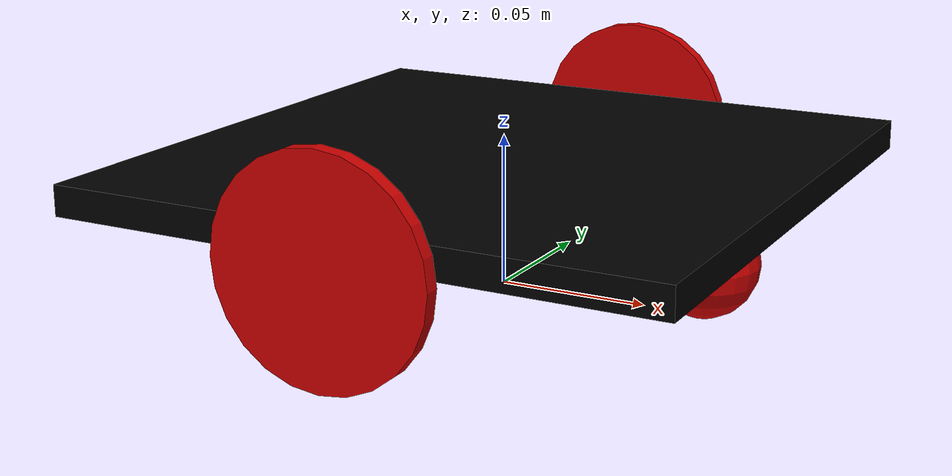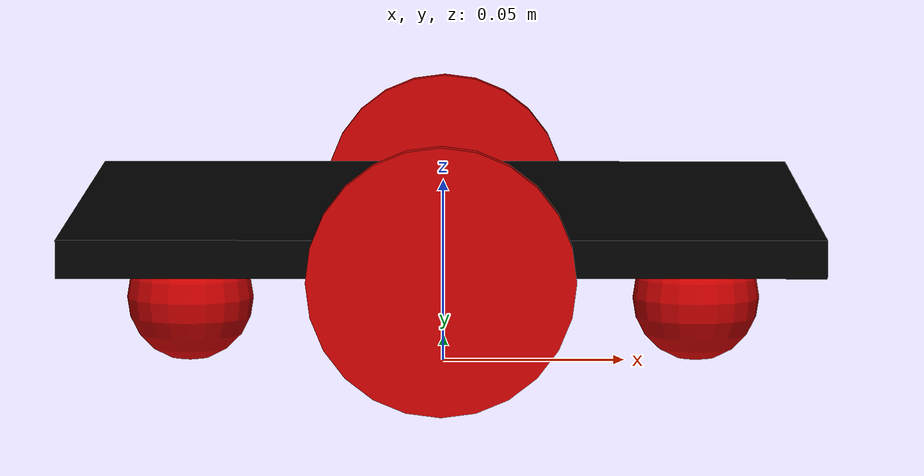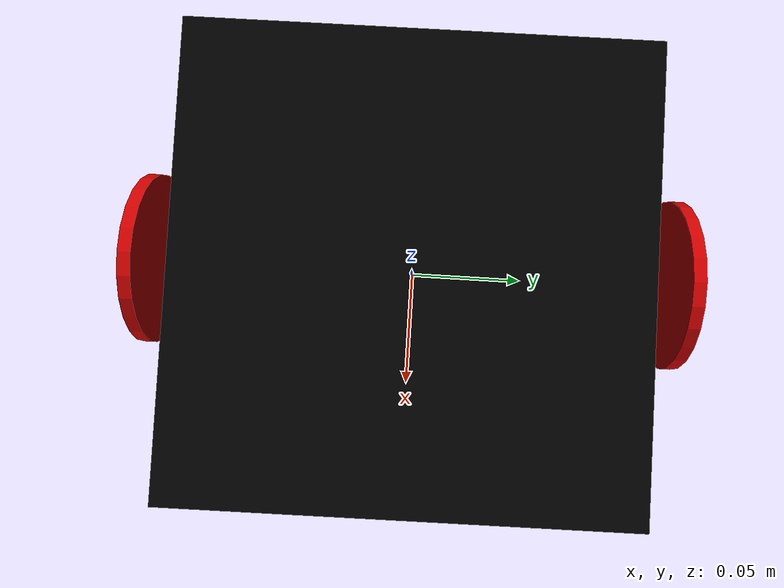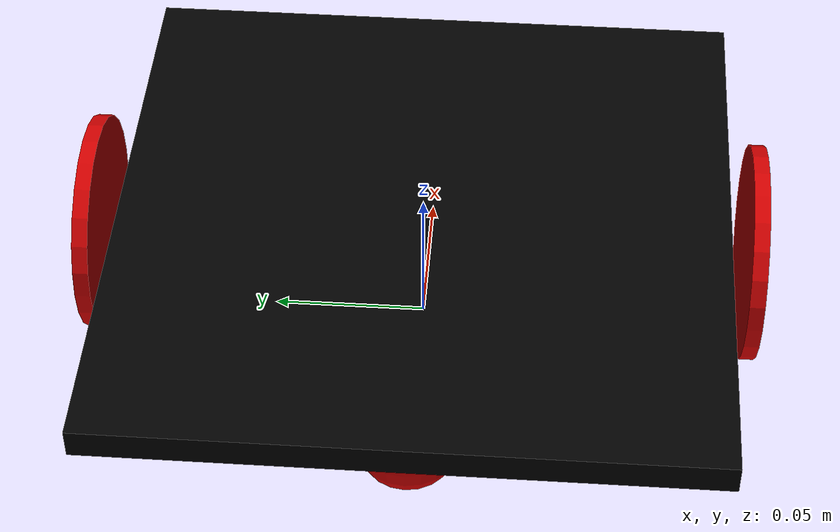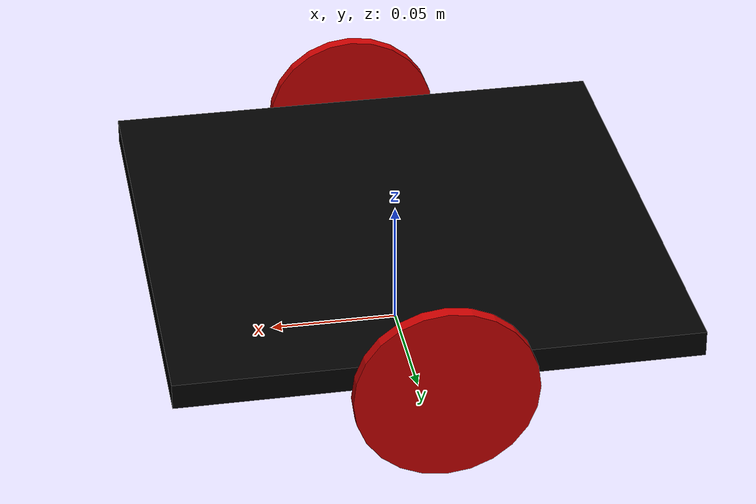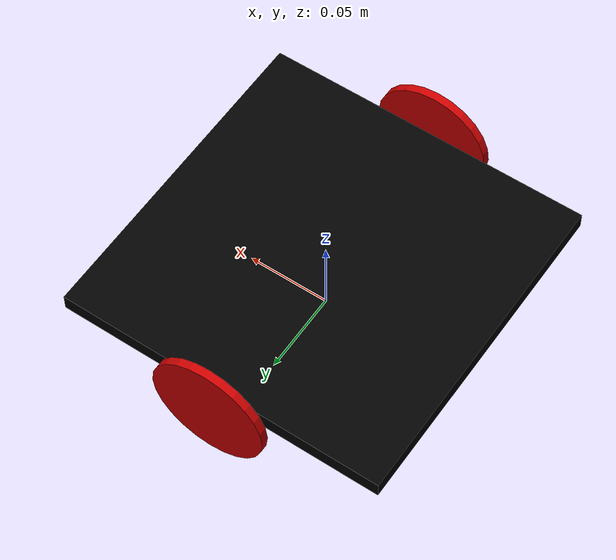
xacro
<?xml version="1.0"?>
<robot xmlns:xacro="http://www.ros.org/wiki/xacro" name="diff_drive">

  <xacro:property name="base_width" value="0.2"/>
  <xacro:property name="base_len" value="0.2"/>

  <xacro:property name="wheel_radius" value="0.035"/>
  <xacro:property name="base_wheel_gap" value="0.007"/>
  <xacro:property name="wheel_joint_offset" value="0.02"/>

  <xacro:property name="caster_wheel_radius" value="${wheel_radius/2}"/>
  <xacro:property name="caster_wheel_joint_offset" value="0.07"/>

  <!--Include files-->
  <xacro:include filename="$(find diff_drive_description)/urdf/diff_drive_inertial.urdf.xacro" /> <!--Interial macros-->
  <xacro:include filename="$(find diff_drive_description)/urdf/diff_drive_materials.urdf.xacro" /> <!--Colors (materials)-->
  <xacro:include filename="$(find diff_drive_description)/urdf/diff_drive_gazebo.urdf.xacro" /> <!-- Gazebo plugins -->

  <!--Base Footprint-->
  <link name="base_footprint">
    <visual>
        <origin xyz="0 0 0" rpy="0 0 0" />
        <geometry>
            <box size="0.001 0.001 0.001" />
        </geometry>
    </visual>
  </link>

  <!--Base link-->
  <link name="base_link">
    <xacro:box_inertia m="10" w="${base_len}" h="${base_width}" d="0.01"/>
    <visual>
      <geometry>
        <box size="${base_len} ${base_width} 0.01"/>
      </geometry>
      <material name="black"/>
    </visual>
    <collision>
      <geometry>
        <box size="${base_len} ${base_width} 0.01"/>
      </geometry>
    </collision>
  </link>

  <!--base_link to base_footprint Joint-->
  <joint name="base_link_joint" type="fixed">
    <origin xyz="0 0 ${wheel_radius + 0.005}" rpy="0 0 0" />
    <parent link="base_footprint"/>
    <child link="base_link" />
  </joint>

  <!-- WHEELS -->
  <!-- Wheel link & joint macro -->
  <xacro:macro name="wheel" params="prefix reflect">
    <link name="${prefix}_wheel">
      <visual>
        <origin xyz="0 0 0" rpy="${pi/2} 0 0"/>
        <geometry>
          <cylinder radius="${wheel_radius}" length="0.005"/>
        </geometry>
        <material name="red"/>
      </visual>
      <collision>
        <origin xyz="0 0 0" rpy="${pi/2} 0 0"/>
        <geometry>
          <cylinder radius="${wheel_radius}" length="0.005"/>
        </geometry>
      </collision>
      <xacro:cylinder_inertia m="1" r="${wheel_radius}" h="0.005"/>
    </link>

    <joint name="${prefix}_wheel_joint" type="continuous">
      <axis xyz="0 1 0" rpy="0 0 0" />
      <parent link="base_link"/>
      <child link="${prefix}_wheel"/>
      <origin xyz="0 ${((base_width/2)+base_wheel_gap)*reflect} -0.005" rpy="0 0 0"/>
      <limit effort="100" velocity="100" />
      <dynamics damping="0.0" friction="0.0"/>
    </joint>
  </xacro:macro>

  <!--Create Left & Right Wheel links/joints-->
  <xacro:wheel prefix="left" reflect="1"/>
  <xacro:wheel prefix="right" reflect="-1"/>

  <xacro:macro name="caster_wheel" params="prefix reflect">
    <link name="${prefix}_caster_wheel">
      <visual>
        <origin xyz="0 0 0" rpy="0 0 0"/>
        <geometry>
          <sphere radius="${caster_wheel_radius}"/>
        </geometry>
        <material name="red"/>
      </visual>
      <collision>
        <origin xyz="0 0 0" rpy="0 0 0"/>
        <geometry>
          <sphere radius="${caster_wheel_radius}"/>
        </geometry>
      </collision>
      <xacro:sphere_inertia m="0.1" r="${caster_wheel_radius}"/>
    </link>

    <joint name="${prefix}_caster_wheel_joint" type="fixed">
      <parent link="base_link"/>
      <child link="${prefix}_caster_wheel"/>
      <origin xyz="${caster_wheel_joint_offset*reflect} 0 -${caster_wheel_radius+0.005}" rpy="0 0 0"/>
    </joint>

    <gazebo reference="${prefix}_caster_link">
    	<turnGravityOff>false</turnGravityOff>
    </gazebo>
  </xacro:macro>

  <xacro:caster_wheel prefix="front" reflect="1"/>
  <xacro:caster_wheel prefix="back" reflect="-1"/>

</robot>

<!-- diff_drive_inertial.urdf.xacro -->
<robot xmlns:xacro="http://ros.org/wiki/xacro" name="diff_robot_inertial">

  <xacro:macro name="cylinder_inertia" params="m r h">
    <inertial>
      <mass value="${m}"/>
      <inertia ixx="${m*(3*r*r+h*h)/12}" ixy = "0" ixz = "0" iyy="${m*(3*r*r+h*h)/12}" iyz = "0" izz="${m*r*r/2}"/>
    </inertial>
  </xacro:macro>

  <xacro:macro name="box_inertia" params="m w h d">
    <inertial>
      <mass value="${m}"/>
      <inertia ixx="${m / 12.0 * (d*d + h*h)}" ixy="0.0" ixz="0.0" iyy="${m / 12.0 * (w*w + h*h)}" iyz="0.0" izz="${m / 12.0 * (w*w + d*d)}"/>
    </inertial>
  </xacro:macro>

  <xacro:macro name="sphere_inertia" params="m r">
    <inertial>
      <mass value="${m}"/>
      <inertia ixx="${2.0*m*(r*r)/5.0}" ixy="0.0" ixz="0.0" iyy="${2.0*m*(r*r)/5.0}" iyz="0.0" izz="${2.0*m*(r*r)/5.0}"/>
    </inertial>
  </xacro:macro>

</robot>

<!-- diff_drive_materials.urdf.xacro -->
<robot xmlns:xacro="http://ros.org/wiki/xacro" name="diff_drive_colors">

  <!--Color Properties-->
  <material name="blue">
    <color rgba="0 0 0.8 1"/>
  </material>
  <material name="black">
    <color rgba="0 0 0 1"/>
  </material>
  <material name="white">
    <color rgba="1 1 1 1"/>
  </material>
  <material name="red">
    <color rgba="0.8 0.0 0.0 1.0"/>
  </material>

  <gazebo reference="base_link">
    <material>Gazebo/Black</material>
  </gazebo>

  <gazebo reference="right_wheel">
    <material>Gazebo/Red</material>
  </gazebo>

  <gazebo reference="left_wheel">
    <material>Gazebo/Red</material>
  </gazebo>

  <gazebo reference="front_caster_wheel">
    <material>Gazebo/Red</material>
  </gazebo>

  <gazebo reference="back_caster_wheel">
    <material>Gazebo/Red</material>
  </gazebo>
</robot>
